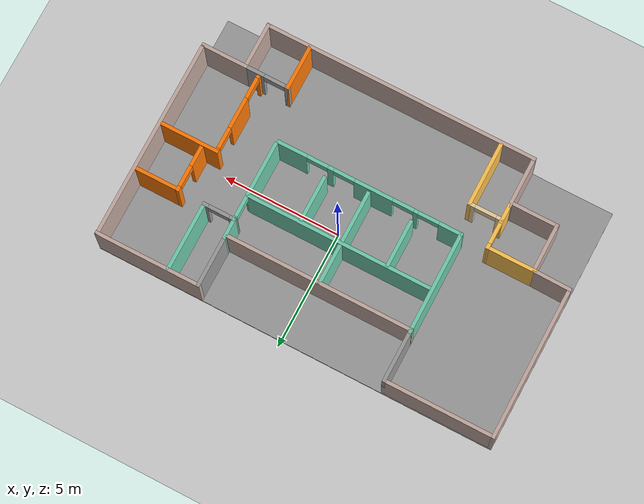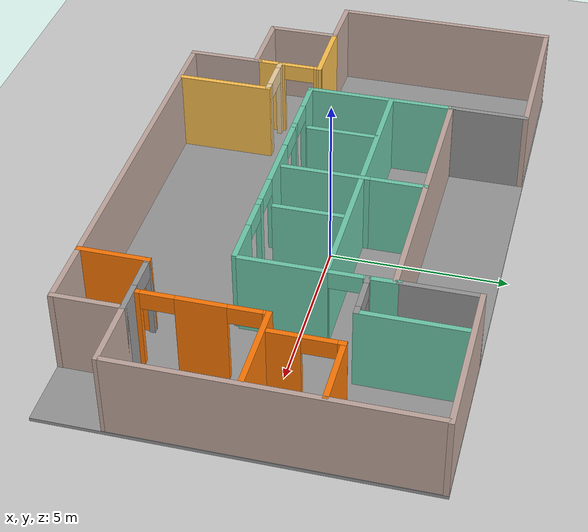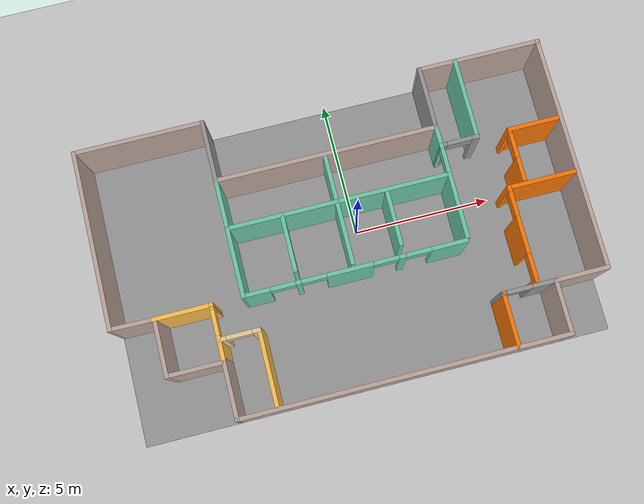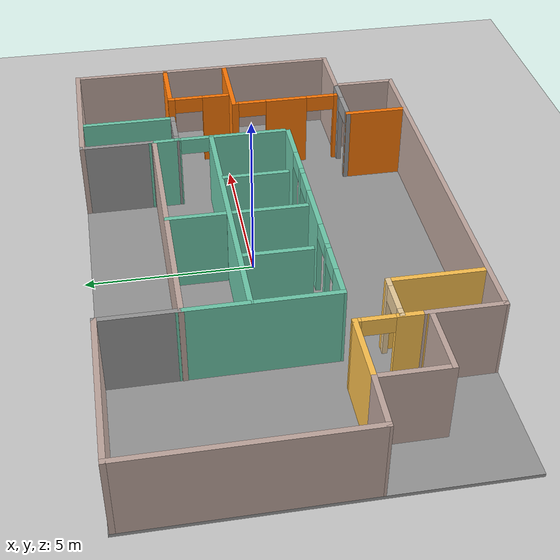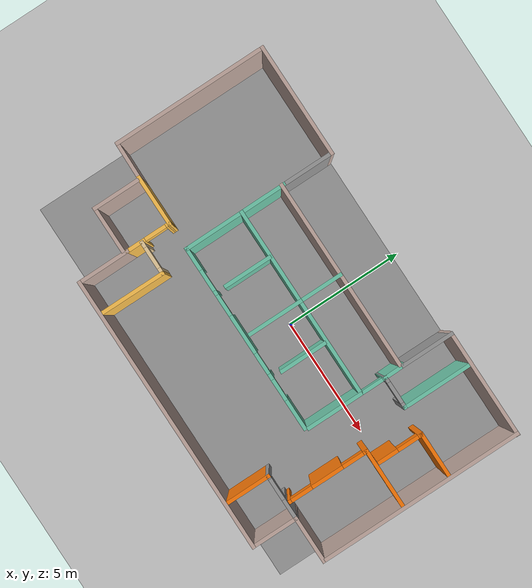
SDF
<sdf version="1.7">
 <world name="default">
  <model name="Udacity_Office">
   <pose>-0.57091 -0.462357 0 0 -0 0</pose>
   <link name="Floor_0">
    <collision name="Floor_0_Collision">
     <geometry><box><size>17.0626 10.4763 0.1</size></box></geometry>
     <pose>0 0 0.05 0 -0 0</pose>
    </collision>
    <visual name="Floor_0_Visual">
     <pose>0 0 0.05 0 -0 0</pose>
     <geometry><box><size>17.0626 10.4763 0.1</size></box></geometry>
     <material>
      <script><uri>file://media/materials/scripts/gazebo.material</uri><name>Gazebo/Grey</name></script>
      <ambient>1 1 1 1</ambient>
     </material>
     <meta><layer>0</layer></meta>
    </visual>
   </link>
   <link name="Wall_113">
    <pose>-4.25156 -2.45124 0 0 -0 3.14159</pose>
    <visual name="Wall_113_Visual_0">
     <pose>-0.592857 0 1.25 0 -0 0</pose>
     <geometry><box><size>0.314286 0.15 2.5</size></box></geometry>
     <material>
      <script><uri>file://media/materials/scripts/gazebo.material</uri><name>Gazebo/Grey</name></script>
      <ambient>0.921569 0.807843 0.615686 1</ambient>
     </material>
     <meta><layer>0</layer></meta>
    </visual>
    <collision name="Wall_113_Collision_0">
     <geometry><box><size>0.314286 0.15 2.5</size></box></geometry>
     <pose>-0.592857 0 1.25 0 -0 0</pose>
    </collision>
    <visual name="Wall_113_Visual_1">
     <pose>0.607143 0 1.25 0 -0 0</pose>
     <geometry><box><size>0.285714 0.15 2.5</size></box></geometry>
     <material>
      <script><uri>file://media/materials/scripts/gazebo.material</uri><name>Gazebo/Grey</name></script>
      <ambient>0.921569 0.807843 0.615686 1</ambient>
     </material>
     <meta><layer>0</layer></meta>
    </visual>
    <collision name="Wall_113_Collision_1">
     <geometry><box><size>0.285714 0.15 2.5</size></box></geometry>
     <pose>0.607143 0 1.25 0 -0 0</pose>
    </collision>
    <visual name="Wall_113_Visual_2">
     <pose>0.014286 0 2.25 0 -0 0</pose>
     <geometry><box><size>0.9 0.15 0.5</size></box></geometry>
     <material>
      <script><uri>file://media/materials/scripts/gazebo.material</uri><name>Gazebo/Grey</name></script>
      <ambient>0.921569 0.807843 0.615686 1</ambient>
     </material>
     <meta><layer>0</layer></meta>
    </visual>
    <collision name="Wall_113_Collision_2">
     <geometry><box><size>0.9 0.15 0.5</size></box></geometry>
     <pose>0.014286 0 2.25 0 -0 0</pose>
    </collision>
   </link>
   <link name="Wall_13">
    <collision name="Wall_13_Collision">
     <geometry><box><size>11.7 0.15 2.5</size></box></geometry>
     <pose>0 0 1.25 0 -0 0</pose>
    </collision>
    <visual name="Wall_13_Visual">
     <pose>0 0 1.25 0 -0 0</pose>
     <geometry><box><size>11.7 0.15 2.5</size></box></geometry>
     <material>
      <script><uri>file://media/materials/scripts/gazebo.material</uri><name>Gazebo/Grey</name></script>
      <ambient>0.760784 0.662745 0.627451 1</ambient>
     </material>
     <meta><layer>0</layer></meta>
    </visual>
    <pose>0.81591 -5.16264 0 0 -0 0</pose>
   </link>
   <link name="Wall_16">
    <collision name="Wall_16_Collision">
     <geometry><box><size>8.5 0.15 2.5</size></box></geometry>
     <pose>0 0 1.25 0 -0 0</pose>
    </collision>
    <visual name="Wall_16_Visual">
     <pose>0 0 1.25 0 -0 0</pose>
     <geometry><box><size>8.5 0.15 2.5</size></box></geometry>
     <material>
      <script><uri>file://media/materials/scripts/gazebo.material</uri><name>Gazebo/Grey</name></script>
      <ambient>0.760784 0.662745 0.627451 1</ambient>
     </material>
     <meta><layer>0</layer></meta>
    </visual>
    <pose>8.4387 0.987797 0 0 -0 1.5708</pose>
   </link>
   <link name="Wall_202">
    <pose>5.66133 -3.29505 0 0 -0 0</pose>
    <visual name="Wall_202_Visual_0">
     <pose>-0.901413 0 1.25 0 -0 0</pose>
     <geometry><box><size>0.197175 0.15 2.5</size></box></geometry>
     <material>
      <script><uri>file://media/materials/scripts/gazebo.material</uri><name>Gazebo/Grey</name></script>
      <ambient>1 1 1 1</ambient>
     </material>
     <meta><layer>0</layer></meta>
    </visual>
    <collision name="Wall_202_Collision_0">
     <geometry><box><size>0.197175 0.15 2.5</size></box></geometry>
     <pose>-0.901413 0 1.25 0 -0 0</pose>
    </collision>
    <visual name="Wall_202_Visual_1">
     <pose>0.548587 0 1.25 0 -0 0</pose>
     <geometry><box><size>0.902825 0.15 2.5</size></box></geometry>
     <material>
      <script><uri>file://media/materials/scripts/gazebo.material</uri><name>Gazebo/Grey</name></script>
      <ambient>1 1 1 1</ambient>
     </material>
     <meta><layer>0</layer></meta>
    </visual>
    <collision name="Wall_202_Collision_1">
     <geometry><box><size>0.902825 0.15 2.5</size></box></geometry>
     <pose>0.548587 0 1.25 0 -0 0</pose>
    </collision>
    <visual name="Wall_202_Visual_2">
     <pose>-0.352825 0 2.25 0 -0 0</pose>
     <geometry><box><size>0.9 0.15 0.5</size></box></geometry>
     <material>
      <script><uri>file://media/materials/scripts/gazebo.material</uri><name>Gazebo/Grey</name></script>
      <ambient>1 1 1 1</ambient>
     </material>
     <meta><layer>0</layer></meta>
    </visual>
    <collision name="Wall_202_Collision_2">
     <geometry><box><size>0.9 0.15 0.5</size></box></geometry>
     <pose>-0.352825 0 2.25 0 -0 0</pose>
    </collision>
   </link>
   <link name="Wall_204">
    <collision name="Wall_204_Collision">
     <geometry><box><size>2.25 0.15 2.5</size></box></geometry>
     <pose>0 0 1.25 0 -0 0</pose>
    </collision>
    <visual name="Wall_204_Visual">
     <pose>0 0 1.25 0 -0 0</pose>
     <geometry><box><size>2.25 0.15 2.5</size></box></geometry>
     <material>
      <script><uri>file://media/materials/scripts/gazebo.material</uri><name>Gazebo/Grey</name></script>
      <ambient>1 1 1 1</ambient>
     </material>
     <meta><layer>0</layer></meta>
    </visual>
    <pose>4.07111 4.1128 0 0 -0 -1.5708</pose>
   </link>
   <link name="Wall_205">
    <collision name="Wall_205_Collision">
     <geometry><box><size>0.943544 0.15 2.5</size></box></geometry>
     <pose>0 0 1.25 0 -0 0</pose>
    </collision>
    <visual name="Wall_205_Visual">
     <pose>0 0 1.25 0 -0 0</pose>
     <geometry><box><size>0.943544 0.15 2.5</size></box></geometry>
     <material>
      <script><uri>file://media/materials/scripts/gazebo.material</uri><name>Gazebo/Grey</name></script>
      <ambient>0.435294 0.796078 0.67451 1</ambient>
     </material>
     <meta><layer>0</layer></meta>
    </visual>
    <pose>4.07751 2.66608 0 0 -0 -1.55467</pose>
   </link>
   <link name="Wall_206">
    <pose>4.08391 0.594357 0 0 -0 -1.5708</pose>
    <visual name="Wall_206_Visual_0">
     <pose>-1.65307 0 1.25 0 -0 0</pose>
     <geometry><box><size>0.193856 0.15 2.5</size></box></geometry>
     <material>
      <script><uri>file://media/materials/scripts/gazebo.material</uri><name>Gazebo/Grey</name></script>
      <ambient>0.435294 0.796078 0.67451 1</ambient>
     </material>
     <meta><layer>0</layer></meta>
    </visual>
    <collision name="Wall_206_Collision_0">
     <geometry><box><size>0.193856 0.15 2.5</size></box></geometry>
     <pose>-1.65307 0 1.25 0 -0 0</pose>
    </collision>
    <visual name="Wall_206_Visual_1">
     <pose>0.546928 0 1.25 0 -0 0</pose>
     <geometry><box><size>2.40614 0.15 2.5</size></box></geometry>
     <material>
      <script><uri>file://media/materials/scripts/gazebo.material</uri><name>Gazebo/Grey</name></script>
      <ambient>0.435294 0.796078 0.67451 1</ambient>
     </material>
     <meta><layer>0</layer></meta>
    </visual>
    <collision name="Wall_206_Collision_1">
     <geometry><box><size>2.40614 0.15 2.5</size></box></geometry>
     <pose>0.546928 0 1.25 0 -0 0</pose>
    </collision>
    <visual name="Wall_206_Visual_2">
     <pose>-1.10614 0 2.25 0 -0 0</pose>
     <geometry><box><size>0.9 0.15 0.5</size></box></geometry>
     <material>
      <script><uri>file://media/materials/scripts/gazebo.material</uri><name>Gazebo/Grey</name></script>
      <ambient>0.435294 0.796078 0.67451 1</ambient>
     </material>
     <meta><layer>0</layer></meta>
    </visual>
    <collision name="Wall_206_Collision_2">
     <geometry><box><size>0.9 0.15 0.5</size></box></geometry>
     <pose>-1.10614 0 2.25 0 -0 0</pose>
    </collision>
   </link>
   <link name="Wall_210">
    <collision name="Wall_210_Collision">
     <geometry><box><size>1.75 0.15 2.5</size></box></geometry>
     <pose>0 0 1.25 0 -0 0</pose>
    </collision>
    <visual name="Wall_210_Visual">
     <pose>0 0 1.25 0 -0 0</pose>
     <geometry><box><size>1.75 0.15 2.5</size></box></geometry>
     <material>
      <script><uri>file://media/materials/scripts/gazebo.material</uri><name>Gazebo/Grey</name></script>
      <ambient>0.435294 0.796078 0.67451 1</ambient>
     </material>
     <meta><layer>0</layer></meta>
    </visual>
    <pose>0.039901 2.15381 0 0 -0 -1.5708</pose>
   </link>
   <link name="Wall_211">
    <collision name="Wall_211_Collision">
     <geometry><box><size>2.5 0.15 2.5</size></box></geometry>
     <pose>0 0 1.25 0 -0 0</pose>
    </collision>
    <visual name="Wall_211_Visual">
     <pose>0 0 1.25 0 -0 0</pose>
     <geometry><box><size>2.5 0.15 2.5</size></box></geometry>
     <material>
      <script><uri>file://media/materials/scripts/gazebo.material</uri><name>Gazebo/Grey</name></script>
      <ambient>0.435294 0.796078 0.67451 1</ambient>
     </material>
     <meta><layer>0</layer></meta>
    </visual>
    <pose>0.039901 0.178808 0 0 -0 -1.5708</pose>
   </link>
   <link name="Wall_24">
    <pose>0.085541 -1.21442 0 0 -0 3.14159</pose>
    <visual name="Wall_24_Visual_0">
     <pose>-3.34594 0 1.25 0 -0 0</pose>
     <geometry><box><size>1.30812 0.15 2.5</size></box></geometry>
     <material>
      <script><uri>file://media/materials/scripts/gazebo.material</uri><name>Gazebo/Grey</name></script>
      <ambient>0.435294 0.796078 0.67451 1</ambient>
     </material>
     <meta><layer>0</layer></meta>
    </visual>
    <collision name="Wall_24_Collision_0">
     <geometry><box><size>1.30812 0.15 2.5</size></box></geometry>
     <pose>-3.34594 0 1.25 0 -0 0</pose>
    </collision>
    <visual name="Wall_24_Visual_1">
     <pose>-1.66844 0 1.25 0 -0 0</pose>
     <geometry><box><size>0.246882 0.15 2.5</size></box></geometry>
     <material>
      <script><uri>file://media/materials/scripts/gazebo.material</uri><name>Gazebo/Grey</name></script>
      <ambient>0.435294 0.796078 0.67451 1</ambient>
     </material>
     <meta><layer>0</layer></meta>
    </visual>
    <collision name="Wall_24_Collision_1">
     <geometry><box><size>0.246882 0.15 2.5</size></box></geometry>
     <pose>-1.66844 0 1.25 0 -0 0</pose>
    </collision>
    <visual name="Wall_24_Visual_2">
     <pose>0.17934 0 1.25 0 -0 0</pose>
     <geometry><box><size>1.64868 0.15 2.5</size></box></geometry>
     <material>
      <script><uri>file://media/materials/scripts/gazebo.material</uri><name>Gazebo/Grey</name></script>
      <ambient>0.435294 0.796078 0.67451 1</ambient>
     </material>
     <meta><layer>0</layer></meta>
    </visual>
    <collision name="Wall_24_Collision_2">
     <geometry><box><size>1.64868 0.15 2.5</size></box></geometry>
     <pose>0.17934 0 1.25 0 -0 0</pose>
    </collision>
    <visual name="Wall_24_Visual_3">
     <pose>1.99816 0 1.25 0 -0 0</pose>
     <geometry><box><size>0.188949 0.15 2.5</size></box></geometry>
     <material>
      <script><uri>file://media/materials/scripts/gazebo.material</uri><name>Gazebo/Grey</name></script>
      <ambient>0.435294 0.796078 0.67451 1</ambient>
     </material>
     <meta><layer>0</layer></meta>
    </visual>
    <collision name="Wall_24_Collision_3">
     <geometry><box><size>0.188949 0.15 2.5</size></box></geometry>
     <pose>1.99816 0 1.25 0 -0 0</pose>
    </collision>
    <visual name="Wall_24_Visual_4">
     <pose>3.49632 0 1.25 0 -0 0</pose>
     <geometry><box><size>1.00737 0.15 2.5</size></box></geometry>
     <material>
      <script><uri>file://media/materials/scripts/gazebo.material</uri><name>Gazebo/Grey</name></script>
      <ambient>0.435294 0.796078 0.67451 1</ambient>
     </material>
     <meta><layer>0</layer></meta>
    </visual>
    <collision name="Wall_24_Collision_4">
     <geometry><box><size>1.00737 0.15 2.5</size></box></geometry>
     <pose>3.49632 0 1.25 0 -0 0</pose>
    </collision>
    <visual name="Wall_24_Visual_5">
     <pose>-2.24188 0 2.25 0 -0 0</pose>
     <geometry><box><size>0.9 0.15 0.5</size></box></geometry>
     <material>
      <script><uri>file://media/materials/scripts/gazebo.material</uri><name>Gazebo/Grey</name></script>
      <ambient>0.435294 0.796078 0.67451 1</ambient>
     </material>
     <meta><layer>0</layer></meta>
    </visual>
    <collision name="Wall_24_Collision_5">
     <geometry><box><size>0.9 0.15 0.5</size></box></geometry>
     <pose>-2.24188 0 2.25 0 -0 0</pose>
    </collision>
    <visual name="Wall_24_Visual_6">
     <pose>-1.095 0 2.25 0 -0 0</pose>
     <geometry><box><size>0.9 0.15 0.5</size></box></geometry>
     <material>
      <script><uri>file://media/materials/scripts/gazebo.material</uri><name>Gazebo/Grey</name></script>
      <ambient>0.435294 0.796078 0.67451 1</ambient>
     </material>
     <meta><layer>0</layer></meta>
    </visual>
    <collision name="Wall_24_Collision_6">
     <geometry><box><size>0.9 0.15 0.5</size></box></geometry>
     <pose>-1.095 0 2.25 0 -0 0</pose>
    </collision>
    <visual name="Wall_24_Visual_7">
     <pose>1.45368 0 2.25 0 -0 0</pose>
     <geometry><box><size>0.9 0.15 0.5</size></box></geometry>
     <material>
      <script><uri>file://media/materials/scripts/gazebo.material</uri><name>Gazebo/Grey</name></script>
      <ambient>0.435294 0.796078 0.67451 1</ambient>
     </material>
     <meta><layer>0</layer></meta>
    </visual>
    <collision name="Wall_24_Collision_7">
     <geometry><box><size>0.9 0.15 0.5</size></box></geometry>
     <pose>1.45368 0 2.25 0 -0 0</pose>
    </collision>
    <visual name="Wall_24_Visual_8">
     <pose>2.54263 0 2.25 0 -0 0</pose>
     <geometry><box><size>0.9 0.15 0.5</size></box></geometry>
     <material>
      <script><uri>file://media/materials/scripts/gazebo.material</uri><name>Gazebo/Grey</name></script>
      <ambient>0.435294 0.796078 0.67451 1</ambient>
     </material>
     <meta><layer>0</layer></meta>
    </visual>
    <collision name="Wall_24_Collision_8">
     <geometry><box><size>0.9 0.15 0.5</size></box></geometry>
     <pose>2.54263 0 2.25 0 -0 0</pose>
    </collision>
   </link>
   <link name="Wall_30">
    <collision name="Wall_30_Collision">
     <geometry><box><size>2.04563 0.15 2.5</size></box></geometry>
     <pose>0 0 1.25 0 -0 0</pose>
    </collision>
    <visual name="Wall_30_Visual">
     <pose>0 0 1.25 0 -0 0</pose>
     <geometry><box><size>2.04563 0.15 2.5</size></box></geometry>
     <material>
      <script><uri>file://media/materials/scripts/gazebo.material</uri><name>Gazebo/Grey</name></script>
      <ambient>0.435294 0.796078 0.67451 1</ambient>
     </material>
     <meta><layer>0</layer></meta>
    </visual>
    <pose>-1.91909 0.184357 0 0 -0 -1.5708</pose>
   </link>
   <link name="Wall_36">
    <collision name="Wall_36_Collision">
     <geometry><box><size>2 0.15 2.5</size></box></geometry>
     <pose>0 0 1.25 0 -0 0</pose>
    </collision>
    <visual name="Wall_36_Visual">
     <pose>0 0 1.25 0 -0 0</pose>
     <geometry><box><size>2 0.15 2.5</size></box></geometry>
     <material>
      <script><uri>file://media/materials/scripts/gazebo.material</uri><name>Gazebo/Grey</name></script>
      <ambient>0.435294 0.796078 0.67451 1</ambient>
     </material>
     <meta><layer>0</layer></meta>
    </visual>
    <pose>1.81091 0.161357 0 0 -0 -1.5708</pose>
   </link>
   <link name="Wall_41">
    <collision name="Wall_41_Collision">
     <geometry><box><size>4.53518 0.15 2.5</size></box></geometry>
     <pose>0 0 1.25 0 -0 0</pose>
    </collision>
    <visual name="Wall_41_Visual">
     <pose>0 0 1.25 0 -0 0</pose>
     <geometry><box><size>4.53518 0.15 2.5</size></box></geometry>
     <material>
      <script><uri>file://media/materials/scripts/gazebo.material</uri><name>Gazebo/Grey</name></script>
      <ambient>0.760784 0.662745 0.627451 1</ambient>
     </material>
     <meta><layer>0</layer></meta>
    </visual>
    <pose>6.2637 5.1628 0 0 -0 0</pose>
   </link>
   <link name="Wall_43">
    <collision name="Wall_43_Collision">
     <geometry><box><size>8 0.15 2.5</size></box></geometry>
     <pose>0 0 1.25 0 -0 0</pose>
    </collision>
    <visual name="Wall_43_Visual">
     <pose>0 0 1.25 0 -0 0</pose>
     <geometry><box><size>8 0.15 2.5</size></box></geometry>
     <material>
      <script><uri>file://media/materials/scripts/gazebo.material</uri><name>Gazebo/Grey</name></script>
      <ambient>0.435294 0.796078 0.67451 1</ambient>
     </material>
     <meta><layer>0</layer></meta>
    </visual>
    <pose>0.083377 1.2008 0 0 -0 0</pose>
   </link>
   <link name="Wall_45">
    <collision name="Wall_45_Collision">
     <geometry><box><size>8 0.15 2.5</size></box></geometry>
     <pose>0 0 1.25 0 -0 0</pose>
    </collision>
    <visual name="Wall_45_Visual">
     <pose>0 0 1.25 0 -0 0</pose>
     <geometry><box><size>8 0.15 2.5</size></box></geometry>
     <material>
      <script><uri>file://media/materials/scripts/gazebo.material</uri><name>Gazebo/Grey</name></script>
      <ambient>0.760784 0.662745 0.627451 1</ambient>
     </material>
     <meta><layer>0</layer></meta>
    </visual>
    <pose>0.05634 2.96381 0 0 -0 0</pose>
   </link>
   <link name="Wall_50">
    <collision name="Wall_50_Collision">
     <geometry><box><size>2 0.15 2.5</size></box></geometry>
     <pose>0 0 1.25 0 -0 0</pose>
    </collision>
    <visual name="Wall_50_Visual">
     <pose>0 0 1.25 0 -0 0</pose>
     <geometry><box><size>2 0.15 2.5</size></box></geometry>
     <material>
      <script><uri>file://media/materials/scripts/gazebo.material</uri><name>Gazebo/Grey</name></script>
      <ambient>0.760784 0.662745 0.627451 1</ambient>
     </material>
     <meta><layer>0</layer></meta>
    </visual>
    <pose>-6.91954 -2.28121 0 0 -0 -1.5708</pose>
   </link>
   <link name="Wall_53">
    <collision name="Wall_53_Collision">
     <geometry><box><size>2 0.15 2.5</size></box></geometry>
     <pose>0 0 1.25 0 -0 0</pose>
    </collision>
    <visual name="Wall_53_Visual">
     <pose>0 0 1.25 0 -0 0</pose>
     <geometry><box><size>2 0.15 2.5</size></box></geometry>
     <material>
      <script><uri>file://media/materials/scripts/gazebo.material</uri><name>Gazebo/Grey</name></script>
      <ambient>0.760784 0.662745 0.627451 1</ambient>
     </material>
     <meta><layer>0</layer></meta>
    </visual>
    <pose>-5.99454 -3.20621 0 0 -0 0</pose>
   </link>
   <link name="Wall_61">
    <collision name="Wall_61_Collision">
     <geometry><box><size>4.75 0.15 2.5</size></box></geometry>
     <pose>0 0 1.25 0 -0 0</pose>
    </collision>
    <visual name="Wall_61_Visual">
     <pose>0 0 1.25 0 -0 0</pose>
     <geometry><box><size>4.75 0.15 2.5</size></box></geometry>
     <material>
      <script><uri>file://media/materials/scripts/gazebo.material</uri><name>Gazebo/Grey</name></script>
      <ambient>0.760784 0.662745 0.627451 1</ambient>
     </material>
     <meta><layer>0</layer></meta>
    </visual>
    <pose>-6.15493 5.13778 0 0 -0 0</pose>
   </link>
   <link name="Wall_63">
    <collision name="Wall_63_Collision">
     <geometry><box><size>2 0.15 2.5</size></box></geometry>
     <pose>0 0 1.25 0 -0 0</pose>
    </collision>
    <visual name="Wall_63_Visual">
     <pose>0 0 1.25 0 -0 0</pose>
     <geometry><box><size>2 0.15 2.5</size></box></geometry>
     <material>
      <script><uri>file://media/materials/scripts/gazebo.material</uri><name>Gazebo/Grey</name></script>
      <ambient>0.760784 0.662745 0.627451 1</ambient>
     </material>
     <meta><layer>0</layer></meta>
    </visual>
    <pose>7.51133 -3.29505 0 0 -0 0</pose>
   </link>
   <link name="Wall_68">
    <collision name="Wall_68_Collision">
     <geometry><box><size>2 0.15 2.5</size></box></geometry>
     <pose>0 0 1.25 0 -0 0</pose>
    </collision>
    <visual name="Wall_68_Visual">
     <pose>0 0 1.25 0 -0 0</pose>
     <geometry><box><size>2 0.15 2.5</size></box></geometry>
     <material>
      <script><uri>file://media/materials/scripts/gazebo.material</uri><name>Gazebo/Grey</name></script>
      <ambient>0.760784 0.662745 0.627451 1</ambient>
     </material>
     <meta><layer>0</layer></meta>
    </visual>
    <pose>6.58633 -4.22005 0 0 -0 -1.5708</pose>
   </link>
   <link name="Wall_71">
    <collision name="Wall_71_Collision">
     <geometry><box><size>2 0.15 2.5</size></box></geometry>
     <pose>0 0 1.25 0 -0 0</pose>
    </collision>
    <visual name="Wall_71_Visual">
     <pose>0 0 1.25 0 -0 0</pose>
     <geometry><box><size>2 0.15 2.5</size></box></geometry>
     <material>
      <script><uri>file://media/materials/scripts/gazebo.material</uri><name>Gazebo/Grey</name></script>
      <ambient>0.996078 0.47451 0.0196078 1</ambient>
     </material>
     <meta><layer>0</layer></meta>
    </visual>
    <pose>4.73633 -4.22005 0 0 -0 -1.5708</pose>
   </link>
   <link name="Wall_76">
    <pose>5.95517 -1.45473 0 0 -0 1.5708</pose>
    <visual name="Wall_76_Visual_0">
     <pose>-1.68721 0 1.25 0 -0 0</pose>
     <geometry><box><size>0.125574 0.15 2.5</size></box></geometry>
     <material>
      <script><uri>file://media/materials/scripts/gazebo.material</uri><name>Gazebo/Grey</name></script>
      <ambient>0.996078 0.47451 0.0196078 1</ambient>
     </material>
     <meta><layer>0</layer></meta>
    </visual>
    <collision name="Wall_76_Collision_0">
     <geometry><box><size>0.125574 0.15 2.5</size></box></geometry>
     <pose>-1.68721 0 1.25 0 -0 0</pose>
    </collision>
    <visual name="Wall_76_Visual_1">
     <pose>-0.04908 0 1.25 0 -0 0</pose>
     <geometry><box><size>1.35069 0.15 2.5</size></box></geometry>
     <material>
      <script><uri>file://media/materials/scripts/gazebo.material</uri><name>Gazebo/Grey</name></script>
      <ambient>0.996078 0.47451 0.0196078 1</ambient>
     </material>
     <meta><layer>0</layer></meta>
    </visual>
    <collision name="Wall_76_Collision_1">
     <geometry><box><size>1.35069 0.15 2.5</size></box></geometry>
     <pose>-0.04908 0 1.25 0 -0 0</pose>
    </collision>
    <visual name="Wall_76_Visual_2">
     <pose>1.63813 0 1.25 0 -0 0</pose>
     <geometry><box><size>0.223734 0.15 2.5</size></box></geometry>
     <material>
      <script><uri>file://media/materials/scripts/gazebo.material</uri><name>Gazebo/Grey</name></script>
      <ambient>0.996078 0.47451 0.0196078 1</ambient>
     </material>
     <meta><layer>0</layer></meta>
    </visual>
    <collision name="Wall_76_Collision_2">
     <geometry><box><size>0.223734 0.15 2.5</size></box></geometry>
     <pose>1.63813 0 1.25 0 -0 0</pose>
    </collision>
    <visual name="Wall_76_Visual_3">
     <pose>-1.17443 0 2.25 0 -0 0</pose>
     <geometry><box><size>0.9 0.15 0.5</size></box></geometry>
     <material>
      <script><uri>file://media/materials/scripts/gazebo.material</uri><name>Gazebo/Grey</name></script>
      <ambient>0.996078 0.47451 0.0196078 1</ambient>
     </material>
     <meta><layer>0</layer></meta>
    </visual>
    <collision name="Wall_76_Collision_3">
     <geometry><box><size>0.9 0.15 0.5</size></box></geometry>
     <pose>-1.17443 0 2.25 0 -0 0</pose>
    </collision>
    <visual name="Wall_76_Visual_4">
     <pose>1.07627 0 2.25 0 -0 0</pose>
     <geometry><box><size>0.9 0.15 0.5</size></box></geometry>
     <material>
      <script><uri>file://media/materials/scripts/gazebo.material</uri><name>Gazebo/Grey</name></script>
      <ambient>0.996078 0.47451 0.0196078 1</ambient>
     </material>
     <meta><layer>0</layer></meta>
    </visual>
    <collision name="Wall_76_Collision_4">
     <geometry><box><size>0.9 0.15 0.5</size></box></geometry>
     <pose>1.07627 0 2.25 0 -0 0</pose>
    </collision>
   </link>
   <link name="Wall_77">
    <collision name="Wall_77_Collision">
     <geometry><box><size>2.5 0.15 2.5</size></box></geometry>
     <pose>0 0 1.25 0 -0 0</pose>
    </collision>
    <visual name="Wall_77_Visual">
     <pose>0 0 1.25 0 -0 0</pose>
     <geometry><box><size>2.5 0.15 2.5</size></box></geometry>
     <material>
      <script><uri>file://media/materials/scripts/gazebo.material</uri><name>Gazebo/Grey</name></script>
      <ambient>0.996078 0.47451 0.0196078 1</ambient>
     </material>
     <meta><layer>0</layer></meta>
    </visual>
    <pose>7.13017 0.220269 0 0 -0 0</pose>
   </link>
   <link name="Wall_79">
    <pose>6.54993 1.31097 0 0 -0 1.5708</pose>
    <visual name="Wall_79_Visual_0">
     <pose>-0.561144 0 1.25 0 -0 0</pose>
     <geometry><box><size>0.877712 0.15 2.5</size></box></geometry>
     <material>
      <script><uri>file://media/materials/scripts/gazebo.material</uri><name>Gazebo/Grey</name></script>
      <ambient>0.996078 0.47451 0.0196078 1</ambient>
     </material>
     <meta><layer>0</layer></meta>
    </visual>
    <collision name="Wall_79_Collision_0">
     <geometry><box><size>0.877712 0.15 2.5</size></box></geometry>
     <pose>-0.561144 0 1.25 0 -0 0</pose>
    </collision>
    <visual name="Wall_79_Visual_1">
     <pose>0.888856 0 1.25 0 -0 0</pose>
     <geometry><box><size>0.222288 0.15 2.5</size></box></geometry>
     <material>
      <script><uri>file://media/materials/scripts/gazebo.material</uri><name>Gazebo/Grey</name></script>
      <ambient>0.996078 0.47451 0.0196078 1</ambient>
     </material>
     <meta><layer>0</layer></meta>
    </visual>
    <collision name="Wall_79_Collision_1">
     <geometry><box><size>0.222288 0.15 2.5</size></box></geometry>
     <pose>0.888856 0 1.25 0 -0 0</pose>
    </collision>
    <visual name="Wall_79_Visual_2">
     <pose>0.327712 0 2.25 0 -0 0</pose>
     <geometry><box><size>0.9 0.15 0.5</size></box></geometry>
     <material>
      <script><uri>file://media/materials/scripts/gazebo.material</uri><name>Gazebo/Grey</name></script>
      <ambient>0.996078 0.47451 0.0196078 1</ambient>
     </material>
     <meta><layer>0</layer></meta>
    </visual>
    <collision name="Wall_79_Collision_2">
     <geometry><box><size>0.9 0.15 0.5</size></box></geometry>
     <pose>0.327712 0 2.25 0 -0 0</pose>
    </collision>
   </link>
   <link name="Wall_80">
    <collision name="Wall_80_Collision">
     <geometry><box><size>1.95412 0.15 2.5</size></box></geometry>
     <pose>0 0 1.25 0 -0 0</pose>
    </collision>
    <visual name="Wall_80_Visual">
     <pose>0 0 1.25 0 -0 0</pose>
     <geometry><box><size>1.95412 0.15 2.5</size></box></geometry>
     <material>
      <script><uri>file://media/materials/scripts/gazebo.material</uri><name>Gazebo/Grey</name></script>
      <ambient>0.996078 0.47451 0.0196078 1</ambient>
     </material>
     <meta><layer>0</layer></meta>
    </visual>
    <pose>7.46728 2.23597 0 0 -0 0</pose>
   </link>
   <link name="Wall_84">
    <collision name="Wall_84_Collision">
     <geometry><box><size>3 0.15 2.5</size></box></geometry>
     <pose>0 0 1.25 0 -0 0</pose>
    </collision>
    <visual name="Wall_84_Visual">
     <pose>0 0 1.25 0 -0 0</pose>
     <geometry><box><size>3 0.15 2.5</size></box></geometry>
     <material>
      <script><uri>file://media/materials/scripts/gazebo.material</uri><name>Gazebo/Grey</name></script>
      <ambient>0.435294 0.796078 0.67451 1</ambient>
     </material>
     <meta><layer>0</layer></meta>
    </visual>
    <pose>5.38388 3.69451 0 0 -0 -1.57077</pose>
   </link>
   <link name="Wall_85">
    <pose>4.73391 2.26936 0 0 -0 3.14159</pose>
    <visual name="Wall_85_Visual_0">
     <pose>-0.590794 0 1.25 0 -0 0</pose>
     <geometry><box><size>0.268411 0.15 2.5</size></box></geometry>
     <material>
      <script><uri>file://media/materials/scripts/gazebo.material</uri><name>Gazebo/Grey</name></script>
      <ambient>1 1 1 1</ambient>
     </material>
     <meta><layer>0</layer></meta>
    </visual>
    <collision name="Wall_85_Collision_0">
     <geometry><box><size>0.268411 0.15 2.5</size></box></geometry>
     <pose>-0.590794 0 1.25 0 -0 0</pose>
    </collision>
    <visual name="Wall_85_Visual_1">
     <pose>0.584206 0 1.25 0 -0 0</pose>
     <geometry><box><size>0.281589 0.15 2.5</size></box></geometry>
     <material>
      <script><uri>file://media/materials/scripts/gazebo.material</uri><name>Gazebo/Grey</name></script>
      <ambient>1 1 1 1</ambient>
     </material>
     <meta><layer>0</layer></meta>
    </visual>
    <collision name="Wall_85_Collision_1">
     <geometry><box><size>0.281589 0.15 2.5</size></box></geometry>
     <pose>0.584206 0 1.25 0 -0 0</pose>
    </collision>
    <visual name="Wall_85_Visual_2">
     <pose>-0.006589 0 2.25 0 -0 0</pose>
     <geometry><box><size>0.9 0.15 0.5</size></box></geometry>
     <material>
      <script><uri>file://media/materials/scripts/gazebo.material</uri><name>Gazebo/Grey</name></script>
      <ambient>1 1 1 1</ambient>
     </material>
     <meta><layer>0</layer></meta>
    </visual>
    <collision name="Wall_85_Collision_2">
     <geometry><box><size>0.9 0.15 0.5</size></box></geometry>
     <pose>-0.006589 0 2.25 0 -0 0</pose>
    </collision>
   </link>
   <link name="Wall_87">
    <collision name="Wall_87_Collision">
     <geometry><box><size>2.75 0.15 2.5</size></box></geometry>
     <pose>0 0 1.25 0 -0 0</pose>
    </collision>
    <visual name="Wall_87_Visual">
     <pose>0 0 1.25 0 -0 0</pose>
     <geometry><box><size>2.75 0.15 2.5</size></box></geometry>
     <material>
      <script><uri>file://media/materials/scripts/gazebo.material</uri><name>Gazebo/Grey</name></script>
      <ambient>1 0.764706 0.305882 1</ambient>
     </material>
     <meta><layer>0</layer></meta>
    </visual>
    <pose>-3.57656 -3.75124 0 0 -0 -1.5708</pose>
   </link>
   <link name="Wall_89">
    <pose>-4.96337 -2.1642 0 0 -0 -1.5708</pose>
    <visual name="Wall_89_Visual_0">
     <pose>-0.882416 0 1.25 0 -0 0</pose>
     <geometry><box><size>0.235169 0.15 2.5</size></box></geometry>
     <material>
      <script><uri>file://media/materials/scripts/gazebo.material</uri><name>Gazebo/Grey</name></script>
      <ambient>1 0.764706 0.305882 1</ambient>
     </material>
     <meta><layer>0</layer></meta>
    </visual>
    <collision name="Wall_89_Collision_0">
     <geometry><box><size>0.235169 0.15 2.5</size></box></geometry>
     <pose>-0.882416 0 1.25 0 -0 0</pose>
    </collision>
    <visual name="Wall_89_Visual_1">
     <pose>0.567584 0 1.25 0 -0 0</pose>
     <geometry><box><size>0.864831 0.15 2.5</size></box></geometry>
     <material>
      <script><uri>file://media/materials/scripts/gazebo.material</uri><name>Gazebo/Grey</name></script>
      <ambient>1 0.764706 0.305882 1</ambient>
     </material>
     <meta><layer>0</layer></meta>
    </visual>
    <collision name="Wall_89_Collision_1">
     <geometry><box><size>0.864831 0.15 2.5</size></box></geometry>
     <pose>0.567584 0 1.25 0 -0 0</pose>
    </collision>
    <visual name="Wall_89_Visual_2">
     <pose>-0.314831 0 2.25 0 -0 0</pose>
     <geometry><box><size>0.9 0.15 0.5</size></box></geometry>
     <material>
      <script><uri>file://media/materials/scripts/gazebo.material</uri><name>Gazebo/Grey</name></script>
      <ambient>1 0.764706 0.305882 1</ambient>
     </material>
     <meta><layer>0</layer></meta>
    </visual>
    <collision name="Wall_89_Collision_2">
     <geometry><box><size>0.9 0.15 0.5</size></box></geometry>
     <pose>-0.314831 0 2.25 0 -0 0</pose>
    </collision>
   </link>
   <link name="Wall_9">
    <collision name="Wall_9_Collision">
     <geometry><box><size>6.5 0.15 2.5</size></box></geometry>
     <pose>0 0 1.25 0 -0 0</pose>
    </collision>
    <visual name="Wall_9_Visual">
     <pose>0 0 1.25 0 -0 0</pose>
     <geometry><box><size>6.5 0.15 2.5</size></box></geometry>
     <material>
      <script><uri>file://media/materials/scripts/gazebo.material</uri><name>Gazebo/Grey</name></script>
      <ambient>0.760784 0.662745 0.627451 1</ambient>
     </material>
     <meta><layer>0</layer></meta>
    </visual>
    <pose>-8.45493 1.96278 0 0 -0 -1.5708</pose>
   </link>
   <link name="Wall_90">
    <collision name="Wall_90_Collision">
     <geometry><box><size>2.22344 0.15 2.5</size></box></geometry>
     <pose>0 0 1.25 0 -0 0</pose>
    </collision>
    <visual name="Wall_90_Visual">
     <pose>0 0 1.25 0 -0 0</pose>
     <geometry><box><size>2.22344 0.15 2.5</size></box></geometry>
     <material>
      <script><uri>file://media/materials/scripts/gazebo.material</uri><name>Gazebo/Grey</name></script>
      <ambient>0.760784 0.662745 0.627451 1</ambient>
     </material>
     <meta><layer>0</layer></meta>
    </visual>
    <pose>-4.96123 -4.12592 0 0 -0 -1.56873</pose>
   </link>
   <link name="Wall_93">
    <collision name="Wall_93_Collision">
     <geometry><box><size>2.14972 0.15 2.5</size></box></geometry>
     <pose>0 0 1.25 0 -0 0</pose>
    </collision>
    <visual name="Wall_93_Visual">
     <pose>0 0 1.25 0 -0 0</pose>
     <geometry><box><size>2.14972 0.15 2.5</size></box></geometry>
     <material>
      <script><uri>file://media/materials/scripts/gazebo.material</uri><name>Gazebo/Grey</name></script>
      <ambient>1 0.764706 0.305882 1</ambient>
     </material>
     <meta><layer>0</layer></meta>
    </visual>
    <pose>-5.96323 -1.23942 0 0 -0 0.00022</pose>
   </link>
   <link name="Wall_95">
    <collision name="Wall_95_Collision">
     <geometry><box><size>4.4022 0.15 2.5</size></box></geometry>
     <pose>0 0 1.25 0 -0 0</pose>
    </collision>
    <visual name="Wall_95_Visual">
     <pose>0 0 1.25 0 -0 0</pose>
     <geometry><box><size>4.4022 0.15 2.5</size></box></geometry>
     <material>
      <script><uri>file://media/materials/scripts/gazebo.material</uri><name>Gazebo/Grey</name></script>
      <ambient>0.435294 0.796078 0.67451 1</ambient>
     </material>
     <meta><layer>0</layer></meta>
    </visual>
    <pose>-3.84719 0.911682 0 0 -0 1.57443</pose>
   </link>
   <link name="Wall_96">
    <collision name="Wall_96_Collision">
     <geometry><box><size>2.25 0.15 2.5</size></box></geometry>
     <pose>0 0 1.25 0 -0 0</pose>
    </collision>
    <visual name="Wall_96_Visual">
     <pose>0 0 1.25 0 -0 0</pose>
     <geometry><box><size>2.25 0.15 2.5</size></box></geometry>
     <material>
      <script><uri>file://media/materials/scripts/gazebo.material</uri><name>Gazebo/Grey</name></script>
      <ambient>1 1 1 1</ambient>
     </material>
     <meta><layer>0</layer></meta>
    </visual>
    <pose>-3.85493 4.08778 0 0 -0 1.5708</pose>
   </link>
   <link name="Wall_99">
    <collision name="Wall_99_Collision">
     <geometry><box><size>1.64209 0.15 2.5</size></box></geometry>
     <pose>0 0 1.25 0 -0 0</pose>
    </collision>
    <visual name="Wall_99_Visual">
     <pose>0 0 1.25 0 -0 0</pose>
     <geometry><box><size>1.64209 0.15 2.5</size></box></geometry>
     <material>
      <script><uri>file://media/materials/scripts/gazebo.material</uri><name>Gazebo/Grey</name></script>
      <ambient>0.760784 0.662745 0.627451 1</ambient>
     </material>
     <meta><layer>0</layer></meta>
    </visual>
    <pose>-7.70901 -1.22593 0 0 -0 -0.018382</pose>
   </link>
   <static>1</static>
  </model>
  <model name="ground_plane">
   <static>1</static>
   <link name="link">
    <collision name="collision">
     <geometry><plane><normal>0 0 1</normal><size>100 100</size></plane></geometry>
     <surface>
      <contact><collide_bitmask>65535</collide_bitmask></contact>
      <friction><ode><mu>100</mu><mu2>50</mu2></ode></friction>
     </surface>
    </collision>
    <visual name="visual">
     <cast_shadows>0</cast_shadows>
     <geometry><plane><normal>0 0 1</normal><size>100 100</size></plane></geometry>
     <material>
      <script><uri>file://media/materials/scripts/gazebo.material</uri><name>Gazebo/Grey</name></script>
     </material>
    </visual>
   </link>
   <pose>-4.07315 -7.5209 0 0 -0 0</pose>
  </model>
 </world>
</sdf>
